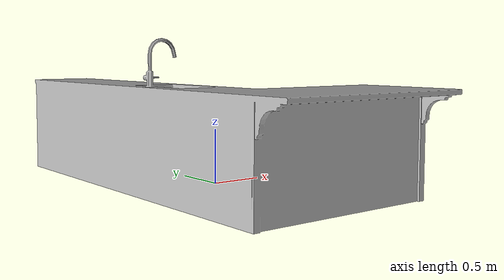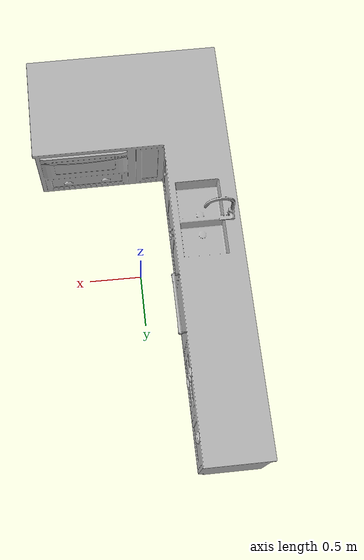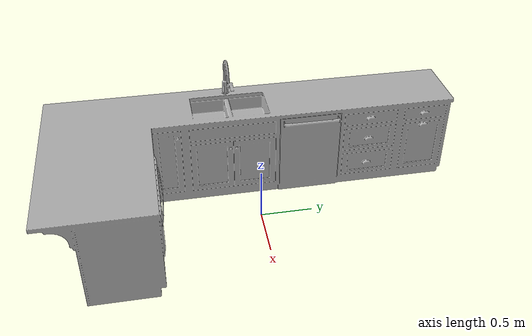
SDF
<?xml version='1.0'?>
<sdf version='1.4'>
  <model name='s__1051'>
    <pose>0 0 0 0 0 0</pose>
    <static>true</static>
    <link name='link'>
      <collision name='collision'>
        <pose>0 0 0 0 0 0</pose>
        <geometry>
          <box>
            <size>1.82 3.92 2</size>
          </box>
        </geometry>
      </collision>
      <visual name='visual'>
        <pose>0 0 0 0 0 0</pose>
        <geometry>
          <mesh><uri>model://s__1051/s__1051.dae</uri></mesh>
        </geometry>
      </visual>
    </link>
  </model>
</sdf>
